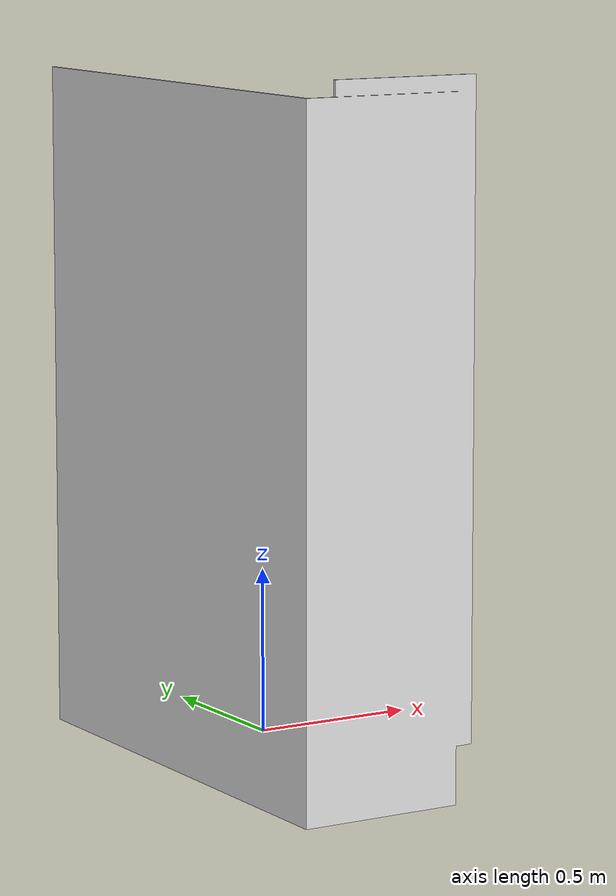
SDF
<?xml version='1.0'?>
<sdf version="1.4">
	<model name="shower">
		<static>1</static>
		<link name="link">
			<visual name="mesh">
				<geometry>
					<mesh>
						<uri>model://meshes/shower.dae</uri>
					</mesh>
				</geometry>
			</visual>
			<collision name="collider">
				<pose>0 -0.28 1 0 0 0</pose>
				<geometry>
					<box>
						<size>0.91 1.46 2</size>
					</box>
				</geometry>
			</collision>
		</link>
	</model>
</sdf>
